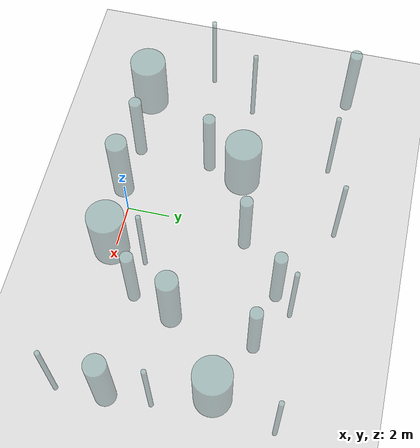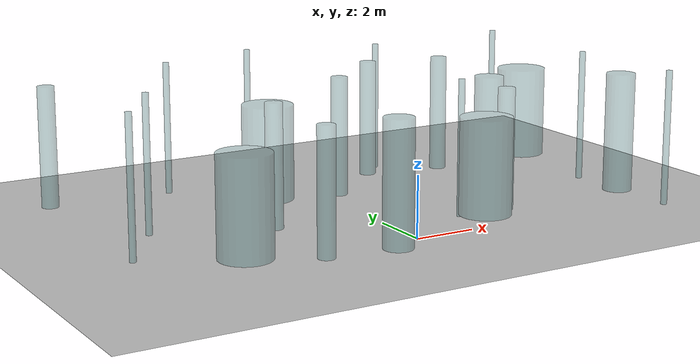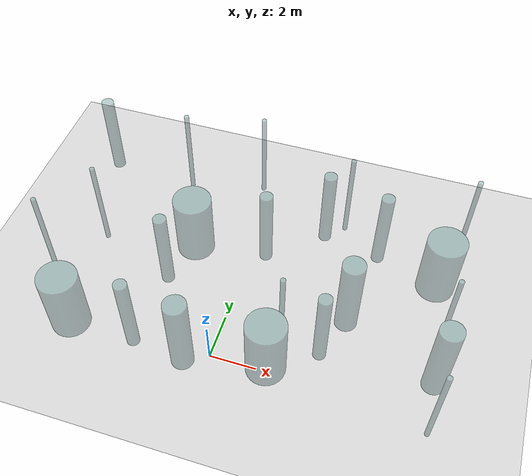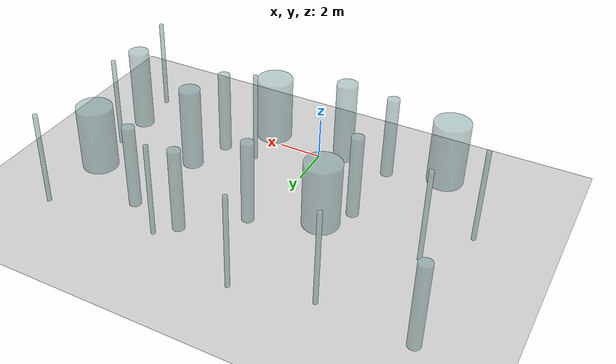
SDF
<sdf version="1.6">
 <world name="default">
  <model name="ground_plane">
   <static>1</static>
   <link name="link">
    <collision name="collision">
     <geometry><plane><normal>0 0 1</normal><size>100 100</size></plane></geometry>
     <surface><friction><ode><mu>100</mu><mu2>50</mu2></ode></friction></surface>
    </collision>
    <visual name="visual">
     <cast_shadows>0</cast_shadows>
     <geometry><plane><normal>0 0 1</normal><size>100 100</size></plane></geometry>
     <material>
      <script><uri>file://media/materials/scripts/gazebo.material</uri><name>Gazebo/Grey</name></script>
     </material>
    </visual>
   </link>
  </model>
  <model name="cylinders">
   <link name="link_clone">
    <inertial>
     <mass>1</mass>
     <inertia><ixx>0.145833</ixx><ixy>0</ixy><ixz>0</ixz><iyy>0.145833</iyy><iyz>0</iyz><izz>0.125</izz></inertia>
    </inertial>
    <pose>-2.72794 0.553847 -0 -0 -0 -0.001272</pose>
    <visual name="visual">
     <geometry><cylinder><radius>0.280725</radius><length>4</length></cylinder></geometry>
     <material>
      <script><name>Gazebo/Grey</name><uri>file://media/materials/scripts/gazebo.material</uri></script>
      <ambient>0.1 0.1 0.9 0.6</ambient>
      <shader type="vertex"><normal_map>__default__</normal_map></shader>
      <diffuse>0.3 0.5 0.5 0.4</diffuse>
      <specular>0.01 0.01 0.01 1</specular>
      <emissive>0 0 0 1</emissive>
      <lighting>1</lighting>
     </material>
    </visual>
    <collision name="collision">
     <geometry><cylinder><radius>0.280725</radius><length>4</length></cylinder></geometry>
     <surface>
      <friction>
       <ode><mu>1</mu><mu2>1</mu2><fdir1>0 0 0</fdir1><slip1>0</slip1><slip2>0</slip2></ode>
       <torsional>
        <coefficient>1</coefficient>
        <patch_radius>0</patch_radius>
        <surface_radius>0</surface_radius>
        <use_patch_radius>1</use_patch_radius>
        <ode><slip>0</slip></ode>
       </torsional>
      </friction>
      <bounce><restitution_coefficient>0</restitution_coefficient><threshold>1e+06</threshold></bounce>
      <contact>
       <collide_without_contact>0</collide_without_contact>
       <collide_without_contact_bitmask>1</collide_without_contact_bitmask>
       <collide_bitmask>1</collide_bitmask>
       <ode>
        <soft_cfm>0</soft_cfm>
        <soft_erp>0.2</soft_erp>
        <kp>1e+13</kp>
        <kd>1</kd>
        <max_vel>0.01</max_vel>
        <min_depth>0</min_depth>
       </ode>
       <bullet>
        <split_impulse>1</split_impulse>
        <split_impulse_penetration_threshold>-0.01</split_impulse_penetration_threshold>
        <soft_cfm>0</soft_cfm>
        <soft_erp>0.2</soft_erp>
        <kp>1e+13</kp>
        <kd>1</kd>
       </bullet>
      </contact>
     </surface>
    </collision>
   </link>
   <link name="link_clone_0">
    <inertial>
     <mass>1</mass>
     <inertia><ixx>0.145833</ixx><ixy>0</ixy><ixz>0</ixz><iyy>0.145833</iyy><iyz>0</iyz><izz>0.125</izz></inertia>
    </inertial>
    <pose>-2.56006 4.06753 -1e-06 -0 -0 -0.001272</pose>
    <visual name="visual">
     <geometry><cylinder><radius>0.280725</radius><length>4</length></cylinder></geometry>
     <material>
      <script><name>Gazebo/Grey</name><uri>file://media/materials/scripts/gazebo.material</uri></script>
      <ambient>0.1 0.1 0.9 0.6</ambient>
      <shader type="vertex"><normal_map>__default__</normal_map></shader>
      <diffuse>0.3 0.5 0.5 0.4</diffuse>
      <specular>0.01 0.01 0.01 1</specular>
      <emissive>0 0 0 1</emissive>
      <lighting>1</lighting>
     </material>
    </visual>
    <collision name="collision">
     <geometry><cylinder><radius>0.280725</radius><length>4</length></cylinder></geometry>
     <surface>
      <friction>
       <ode><mu>1</mu><mu2>1</mu2><fdir1>0 0 0</fdir1><slip1>0</slip1><slip2>0</slip2></ode>
       <torsional>
        <coefficient>1</coefficient>
        <patch_radius>0</patch_radius>
        <surface_radius>0</surface_radius>
        <use_patch_radius>1</use_patch_radius>
        <ode><slip>0</slip></ode>
       </torsional>
      </friction>
      <bounce><restitution_coefficient>0</restitution_coefficient><threshold>1e+06</threshold></bounce>
      <contact>
       <collide_without_contact>0</collide_without_contact>
       <collide_without_contact_bitmask>1</collide_without_contact_bitmask>
       <collide_bitmask>1</collide_bitmask>
       <ode>
        <soft_cfm>0</soft_cfm>
        <soft_erp>0.2</soft_erp>
        <kp>1e+13</kp>
        <kd>1</kd>
        <max_vel>0.01</max_vel>
        <min_depth>0</min_depth>
       </ode>
       <bullet>
        <split_impulse>1</split_impulse>
        <split_impulse_penetration_threshold>-0.01</split_impulse_penetration_threshold>
        <soft_cfm>0</soft_cfm>
        <soft_erp>0.2</soft_erp>
        <kp>1e+13</kp>
        <kd>1</kd>
       </bullet>
      </contact>
     </surface>
    </collision>
   </link>
   <link name="link_clone_1">
    <inertial>
     <mass>1</mass>
     <inertia><ixx>0.145833</ixx><ixy>0</ixy><ixz>0</ixz><iyy>0.145833</iyy><iyz>0</iyz><izz>0.125</izz></inertia>
    </inertial>
    <pose>1.23896 6.59521 -0 -0 -0 -0.001272</pose>
    <visual name="visual">
     <geometry><cylinder><radius>0.280725</radius><length>4</length></cylinder></geometry>
     <material>
      <script><name>Gazebo/Grey</name><uri>file://media/materials/scripts/gazebo.material</uri></script>
      <ambient>0.1 0.1 0.9 0.6</ambient>
      <shader type="vertex"><normal_map>__default__</normal_map></shader>
      <diffuse>0.3 0.5 0.5 0.4</diffuse>
      <specular>0.01 0.01 0.01 1</specular>
      <emissive>0 0 0 1</emissive>
      <lighting>1</lighting>
     </material>
    </visual>
    <collision name="collision">
     <geometry><cylinder><radius>0.280725</radius><length>4</length></cylinder></geometry>
     <surface>
      <friction>
       <ode><mu>1</mu><mu2>1</mu2><fdir1>0 0 0</fdir1><slip1>0</slip1><slip2>0</slip2></ode>
       <torsional>
        <coefficient>1</coefficient>
        <patch_radius>0</patch_radius>
        <surface_radius>0</surface_radius>
        <use_patch_radius>1</use_patch_radius>
        <ode><slip>0</slip></ode>
       </torsional>
      </friction>
      <bounce><restitution_coefficient>0</restitution_coefficient><threshold>1e+06</threshold></bounce>
      <contact>
       <collide_without_contact>0</collide_without_contact>
       <collide_without_contact_bitmask>1</collide_without_contact_bitmask>
       <collide_bitmask>1</collide_bitmask>
       <ode>
        <soft_cfm>0</soft_cfm>
        <soft_erp>0.2</soft_erp>
        <kp>1e+13</kp>
        <kd>1</kd>
        <max_vel>0.01</max_vel>
        <min_depth>0</min_depth>
       </ode>
       <bullet>
        <split_impulse>1</split_impulse>
        <split_impulse_penetration_threshold>-0.01</split_impulse_penetration_threshold>
        <soft_cfm>0</soft_cfm>
        <soft_erp>0.2</soft_erp>
        <kp>1e+13</kp>
        <kd>1</kd>
       </bullet>
      </contact>
     </surface>
    </collision>
   </link>
   <link name="link_clone_11_clone_0_clone">
    <inertial>
     <mass>2.96402</mass>
     <inertia><ixx>4.12512</ixx><ixy>0</ixy><ixz>0</ixz><iyy>4.12512</iyy><iyz>0</iyz><izz>0.346176</izz></inertia>
    </inertial>
    <pose>-0.406852 0.309702 2e-06 -0 -0 -0.003816</pose>
    <visual name="visual">
     <geometry><cylinder><radius>0.483307</radius><length>4</length></cylinder></geometry>
     <material>
      <script><name>Gazebo/Grey</name><uri>file://media/materials/scripts/gazebo.material</uri></script>
      <ambient>0.1 0.1 0.9 0.6</ambient>
      <shader type="vertex"><normal_map>__default__</normal_map></shader>
      <diffuse>0.3 0.5 0.5 0.4</diffuse>
      <specular>0.01 0.01 0.01 1</specular>
      <emissive>0 0 0 1</emissive>
      <lighting>1</lighting>
     </material>
    </visual>
    <collision name="collision">
     <geometry><cylinder><radius>0.483307</radius><length>4</length></cylinder></geometry>
     <surface>
      <friction>
       <ode><mu>1</mu><mu2>1</mu2><fdir1>0 0 0</fdir1><slip1>0</slip1><slip2>0</slip2></ode>
       <torsional>
        <coefficient>1</coefficient>
        <patch_radius>0</patch_radius>
        <surface_radius>0</surface_radius>
        <use_patch_radius>1</use_patch_radius>
        <ode><slip>0</slip></ode>
       </torsional>
      </friction>
      <bounce><restitution_coefficient>0</restitution_coefficient><threshold>1e+06</threshold></bounce>
      <contact>
       <collide_without_contact>0</collide_without_contact>
       <collide_without_contact_bitmask>1</collide_without_contact_bitmask>
       <collide_bitmask>1</collide_bitmask>
       <ode>
        <soft_cfm>0</soft_cfm>
        <soft_erp>0.2</soft_erp>
        <kp>1e+13</kp>
        <kd>1</kd>
        <max_vel>0.01</max_vel>
        <min_depth>0</min_depth>
       </ode>
       <bullet>
        <split_impulse>1</split_impulse>
        <split_impulse_penetration_threshold>-0.01</split_impulse_penetration_threshold>
        <soft_cfm>0</soft_cfm>
        <soft_erp>0.2</soft_erp>
        <kp>1e+13</kp>
        <kd>1</kd>
       </bullet>
      </contact>
     </surface>
    </collision>
   </link>
   <link name="link_clone_11_clone_0_clone_0">
    <inertial>
     <mass>2.96402</mass>
     <inertia><ixx>4.12512</ixx><ixy>0</ixy><ixz>0</ixz><iyy>4.12512</iyy><iyz>0</iyz><izz>0.346176</izz></inertia>
    </inertial>
    <pose>5.5796 4.15801 3e-06 -0 -0 -0.003816</pose>
    <visual name="visual">
     <geometry><cylinder><radius>0.483307</radius><length>4</length></cylinder></geometry>
     <material>
      <script><name>Gazebo/Grey</name><uri>file://media/materials/scripts/gazebo.material</uri></script>
      <ambient>0.1 0.1 0.9 0.6</ambient>
      <shader type="vertex"><normal_map>__default__</normal_map></shader>
      <diffuse>0.3 0.5 0.5 0.4</diffuse>
      <specular>0.01 0.01 0.01 1</specular>
      <emissive>0 0 0 1</emissive>
      <lighting>1</lighting>
     </material>
    </visual>
    <collision name="collision">
     <geometry><cylinder><radius>0.483307</radius><length>4</length></cylinder></geometry>
     <surface>
      <friction>
       <ode><mu>1</mu><mu2>1</mu2><fdir1>0 0 0</fdir1><slip1>0</slip1><slip2>0</slip2></ode>
       <torsional>
        <coefficient>1</coefficient>
        <patch_radius>0</patch_radius>
        <surface_radius>0</surface_radius>
        <use_patch_radius>1</use_patch_radius>
        <ode><slip>0</slip></ode>
       </torsional>
      </friction>
      <bounce><restitution_coefficient>0</restitution_coefficient><threshold>1e+06</threshold></bounce>
      <contact>
       <collide_without_contact>0</collide_without_contact>
       <collide_without_contact_bitmask>1</collide_without_contact_bitmask>
       <collide_bitmask>1</collide_bitmask>
       <ode>
        <soft_cfm>0</soft_cfm>
        <soft_erp>0.2</soft_erp>
        <kp>1e+13</kp>
        <kd>1</kd>
        <max_vel>0.01</max_vel>
        <min_depth>0</min_depth>
       </ode>
       <bullet>
        <split_impulse>1</split_impulse>
        <split_impulse_penetration_threshold>-0.01</split_impulse_penetration_threshold>
        <soft_cfm>0</soft_cfm>
        <soft_erp>0.2</soft_erp>
        <kp>1e+13</kp>
        <kd>1</kd>
       </bullet>
      </contact>
     </surface>
    </collision>
   </link>
   <link name="link_clone_11_clone_0_clone_1">
    <inertial>
     <mass>2.96402</mass>
     <inertia><ixx>4.12512</ixx><ixy>0</ixy><ixz>0</ixz><iyy>4.12512</iyy><iyz>0</iyz><izz>0.346176</izz></inertia>
    </inertial>
    <pose>9.65056 2.30999 3e-06 -0 -0 -0.003816</pose>
    <visual name="visual">
     <geometry><cylinder><radius>0.483307</radius><length>4</length></cylinder></geometry>
     <material>
      <script><name>Gazebo/Grey</name><uri>file://media/materials/scripts/gazebo.material</uri></script>
      <ambient>0.1 0.1 0.9 0.6</ambient>
      <shader type="vertex"><normal_map>__default__</normal_map></shader>
      <diffuse>0.3 0.5 0.5 0.4</diffuse>
      <specular>0.01 0.01 0.01 1</specular>
      <emissive>0 0 0 1</emissive>
      <lighting>1</lighting>
     </material>
    </visual>
    <collision name="collision">
     <geometry><cylinder><radius>0.483307</radius><length>4</length></cylinder></geometry>
     <surface>
      <friction>
       <ode><mu>1</mu><mu2>1</mu2><fdir1>0 0 0</fdir1><slip1>0</slip1><slip2>0</slip2></ode>
       <torsional>
        <coefficient>1</coefficient>
        <patch_radius>0</patch_radius>
        <surface_radius>0</surface_radius>
        <use_patch_radius>1</use_patch_radius>
        <ode><slip>0</slip></ode>
       </torsional>
      </friction>
      <bounce><restitution_coefficient>0</restitution_coefficient><threshold>1e+06</threshold></bounce>
      <contact>
       <collide_without_contact>0</collide_without_contact>
       <collide_without_contact_bitmask>1</collide_without_contact_bitmask>
       <collide_bitmask>1</collide_bitmask>
       <ode>
        <soft_cfm>0</soft_cfm>
        <soft_erp>0.2</soft_erp>
        <kp>1e+13</kp>
        <kd>1</kd>
        <max_vel>0.01</max_vel>
        <min_depth>0</min_depth>
       </ode>
       <bullet>
        <split_impulse>1</split_impulse>
        <split_impulse_penetration_threshold>-0.01</split_impulse_penetration_threshold>
        <soft_cfm>0</soft_cfm>
        <soft_erp>0.2</soft_erp>
        <kp>1e+13</kp>
        <kd>1</kd>
       </bullet>
      </contact>
     </surface>
    </collision>
   </link>
   <link name="link_clone_11_clone_1_clone">
    <inertial>
     <mass>0.168862</mass>
     <inertia>
      <ixx>0.33323</ixx>
      <ixy>0</ixy>
      <ixz>0</ixz>
      <iyy>0.33323</iyy>
      <iyz>0</iyz>
      <izz>0.000924096</izz>
     </inertia>
    </inertial>
    <pose>9.79655 0.113416 5e-06 -0 -0 -0.003816</pose>
    <visual name="visual">
     <geometry><cylinder><radius>0.104618</radius><length>4.8629</length></cylinder></geometry>
     <material>
      <script><name>Gazebo/Grey</name><uri>file://media/materials/scripts/gazebo.material</uri></script>
      <ambient>0.1 0.1 0.9 0.6</ambient>
      <shader type="vertex"><normal_map>__default__</normal_map></shader>
      <diffuse>0.3 0.5 0.5 0.4</diffuse>
      <specular>0.01 0.01 0.01 1</specular>
      <emissive>0 0 0 1</emissive>
      <lighting>1</lighting>
     </material>
    </visual>
    <collision name="collision">
     <geometry><cylinder><radius>0.104618</radius><length>4.8629</length></cylinder></geometry>
     <surface>
      <friction>
       <ode><mu>1</mu><mu2>1</mu2><fdir1>0 0 0</fdir1><slip1>0</slip1><slip2>0</slip2></ode>
       <torsional>
        <coefficient>1</coefficient>
        <patch_radius>0</patch_radius>
        <surface_radius>0</surface_radius>
        <use_patch_radius>1</use_patch_radius>
        <ode><slip>0</slip></ode>
       </torsional>
      </friction>
      <bounce><restitution_coefficient>0</restitution_coefficient><threshold>1e+06</threshold></bounce>
      <contact>
       <collide_without_contact>0</collide_without_contact>
       <collide_without_contact_bitmask>1</collide_without_contact_bitmask>
       <collide_bitmask>1</collide_bitmask>
       <ode>
        <soft_cfm>0</soft_cfm>
        <soft_erp>0.2</soft_erp>
        <kp>1e+13</kp>
        <kd>1</kd>
        <max_vel>0.01</max_vel>
        <min_depth>0</min_depth>
       </ode>
       <bullet>
        <split_impulse>1</split_impulse>
        <split_impulse_penetration_threshold>-0.01</split_impulse_penetration_threshold>
        <soft_cfm>0</soft_cfm>
        <soft_erp>0.2</soft_erp>
        <kp>1e+13</kp>
        <kd>1</kd>
       </bullet>
      </contact>
     </surface>
    </collision>
   </link>
   <link name="link_clone_11_clone_1_clone_2">
    <inertial>
     <mass>0.168862</mass>
     <inertia>
      <ixx>0.33323</ixx>
      <ixy>0</ixy>
      <ixz>0</ixz>
      <iyy>0.33323</iyy>
      <iyz>0</iyz>
      <izz>0.000924096</izz>
     </inertia>
    </inertial>
    <pose>-3.54691 9.77771 2e-06 -0 -0 -0.003816</pose>
    <visual name="visual">
     <geometry><cylinder><radius>0.104618</radius><length>4.8629</length></cylinder></geometry>
     <material>
      <script><name>Gazebo/Grey</name><uri>file://media/materials/scripts/gazebo.material</uri></script>
      <ambient>0.1 0.1 0.9 0.6</ambient>
      <shader type="vertex"><normal_map>__default__</normal_map></shader>
      <diffuse>0.3 0.5 0.5 0.4</diffuse>
      <specular>0.01 0.01 0.01 1</specular>
      <emissive>0 0 0 1</emissive>
      <lighting>1</lighting>
     </material>
    </visual>
    <collision name="collision">
     <geometry><cylinder><radius>0.104618</radius><length>4.8629</length></cylinder></geometry>
     <surface>
      <friction>
       <ode><mu>1</mu><mu2>1</mu2><fdir1>0 0 0</fdir1><slip1>0</slip1><slip2>0</slip2></ode>
       <torsional>
        <coefficient>1</coefficient>
        <patch_radius>0</patch_radius>
        <surface_radius>0</surface_radius>
        <use_patch_radius>1</use_patch_radius>
        <ode><slip>0</slip></ode>
       </torsional>
      </friction>
      <bounce><restitution_coefficient>0</restitution_coefficient><threshold>1e+06</threshold></bounce>
      <contact>
       <collide_without_contact>0</collide_without_contact>
       <collide_without_contact_bitmask>1</collide_without_contact_bitmask>
       <collide_bitmask>1</collide_bitmask>
       <ode>
        <soft_cfm>0</soft_cfm>
        <soft_erp>0.2</soft_erp>
        <kp>1e+13</kp>
        <kd>1</kd>
        <max_vel>0.01</max_vel>
        <min_depth>0</min_depth>
       </ode>
       <bullet>
        <split_impulse>1</split_impulse>
        <split_impulse_penetration_threshold>-0.01</split_impulse_penetration_threshold>
        <soft_cfm>0</soft_cfm>
        <soft_erp>0.2</soft_erp>
        <kp>1e+13</kp>
        <kd>1</kd>
       </bullet>
      </contact>
     </surface>
    </collision>
   </link>
   <link name="link_clone_11_clone_1_clone_3">
    <inertial>
     <mass>0.168862</mass>
     <inertia>
      <ixx>0.33323</ixx>
      <ixy>0</ixy>
      <ixz>0</ixz>
      <iyy>0.33323</iyy>
      <iyz>0</iyz>
      <izz>0.000924096</izz>
     </inertia>
    </inertial>
    <pose>-6.17339 5.47355 2e-06 -0 -0 -0.003816</pose>
    <visual name="visual">
     <geometry><cylinder><radius>0.104618</radius><length>4.8629</length></cylinder></geometry>
     <material>
      <script><name>Gazebo/Grey</name><uri>file://media/materials/scripts/gazebo.material</uri></script>
      <ambient>0.1 0.1 0.9 0.6</ambient>
      <shader type="vertex"><normal_map>__default__</normal_map></shader>
      <diffuse>0.3 0.5 0.5 0.4</diffuse>
      <specular>0.01 0.01 0.01 1</specular>
      <emissive>0 0 0 1</emissive>
      <lighting>1</lighting>
     </material>
    </visual>
    <collision name="collision">
     <geometry><cylinder><radius>0.104618</radius><length>4.8629</length></cylinder></geometry>
     <surface>
      <friction>
       <ode><mu>1</mu><mu2>1</mu2><fdir1>0 0 0</fdir1><slip1>0</slip1><slip2>0</slip2></ode>
       <torsional>
        <coefficient>1</coefficient>
        <patch_radius>0</patch_radius>
        <surface_radius>0</surface_radius>
        <use_patch_radius>1</use_patch_radius>
        <ode><slip>0</slip></ode>
       </torsional>
      </friction>
      <bounce><restitution_coefficient>0</restitution_coefficient><threshold>1e+06</threshold></bounce>
      <contact>
       <collide_without_contact>0</collide_without_contact>
       <collide_without_contact_bitmask>1</collide_without_contact_bitmask>
       <collide_bitmask>1</collide_bitmask>
       <ode>
        <soft_cfm>0</soft_cfm>
        <soft_erp>0.2</soft_erp>
        <kp>1e+13</kp>
        <kd>1</kd>
        <max_vel>0.01</max_vel>
        <min_depth>0</min_depth>
       </ode>
       <bullet>
        <split_impulse>1</split_impulse>
        <split_impulse_penetration_threshold>-0.01</split_impulse_penetration_threshold>
        <soft_cfm>0</soft_cfm>
        <soft_erp>0.2</soft_erp>
        <kp>1e+13</kp>
        <kd>1</kd>
       </bullet>
      </contact>
     </surface>
    </collision>
   </link>
   <link name="link_clone_11_clone_1_clone_4">
    <inertial>
     <mass>0.168862</mass>
     <inertia>
      <ixx>0.33323</ixx>
      <ixy>0</ixy>
      <ixz>0</ixz>
      <iyy>0.33323</iyy>
      <iyz>0</iyz>
      <izz>0.000924096</izz>
     </inertia>
    </inertial>
    <pose>9.6101 4.30482 4e-06 -0 -0 -0.003816</pose>
    <visual name="visual">
     <geometry><cylinder><radius>0.104618</radius><length>4.8629</length></cylinder></geometry>
     <material>
      <script><name>Gazebo/Grey</name><uri>file://media/materials/scripts/gazebo.material</uri></script>
      <ambient>0.1 0.1 0.9 0.6</ambient>
      <shader type="vertex"><normal_map>__default__</normal_map></shader>
      <diffuse>0.3 0.5 0.5 0.4</diffuse>
      <specular>0.01 0.01 0.01 1</specular>
      <emissive>0 0 0 1</emissive>
      <lighting>1</lighting>
     </material>
    </visual>
    <collision name="collision">
     <geometry><cylinder><radius>0.104618</radius><length>4.8629</length></cylinder></geometry>
     <surface>
      <friction>
       <ode><mu>1</mu><mu2>1</mu2><fdir1>0 0 0</fdir1><slip1>0</slip1><slip2>0</slip2></ode>
       <torsional>
        <coefficient>1</coefficient>
        <patch_radius>0</patch_radius>
        <surface_radius>0</surface_radius>
        <use_patch_radius>1</use_patch_radius>
        <ode><slip>0</slip></ode>
       </torsional>
      </friction>
      <bounce><restitution_coefficient>0</restitution_coefficient><threshold>1e+06</threshold></bounce>
      <contact>
       <collide_without_contact>0</collide_without_contact>
       <collide_without_contact_bitmask>1</collide_without_contact_bitmask>
       <collide_bitmask>1</collide_bitmask>
       <ode>
        <soft_cfm>0</soft_cfm>
        <soft_erp>0.2</soft_erp>
        <kp>1e+13</kp>
        <kd>1</kd>
        <max_vel>0.01</max_vel>
        <min_depth>0</min_depth>
       </ode>
       <bullet>
        <split_impulse>1</split_impulse>
        <split_impulse_penetration_threshold>-0.01</split_impulse_penetration_threshold>
        <soft_cfm>0</soft_cfm>
        <soft_erp>0.2</soft_erp>
        <kp>1e+13</kp>
        <kd>1</kd>
       </bullet>
      </contact>
     </surface>
    </collision>
   </link>
   <link name="link_clone_11_clone_1_clone_4_clone_1">
    <inertial>
     <mass>0.168862</mass>
     <inertia>
      <ixx>0.33323</ixx>
      <ixy>0</ixy>
      <ixz>0</ixz>
      <iyy>0.33323</iyy>
      <iyz>0</iyz>
      <izz>0.000924096</izz>
     </inertia>
    </inertial>
    <pose>-7.70706 3.15792 3e-06 -0 -0 -0.005088</pose>
    <visual name="visual">
     <geometry><cylinder><radius>0.104618</radius><length>4.8629</length></cylinder></geometry>
     <material>
      <script><name>Gazebo/Grey</name><uri>file://media/materials/scripts/gazebo.material</uri></script>
      <ambient>0.1 0.1 0.9 0.6</ambient>
      <shader type="vertex"><normal_map>__default__</normal_map></shader>
      <diffuse>0.3 0.5 0.5 0.4</diffuse>
      <specular>0.01 0.01 0.01 1</specular>
      <emissive>0 0 0 1</emissive>
      <lighting>1</lighting>
     </material>
    </visual>
    <collision name="collision">
     <geometry><cylinder><radius>0.104618</radius><length>4.8629</length></cylinder></geometry>
     <surface>
      <friction>
       <ode><mu>1</mu><mu2>1</mu2><fdir1>0 0 0</fdir1><slip1>0</slip1><slip2>0</slip2></ode>
       <torsional>
        <coefficient>1</coefficient>
        <patch_radius>0</patch_radius>
        <surface_radius>0</surface_radius>
        <use_patch_radius>1</use_patch_radius>
        <ode><slip>0</slip></ode>
       </torsional>
      </friction>
      <bounce><restitution_coefficient>0</restitution_coefficient><threshold>1e+06</threshold></bounce>
      <contact>
       <collide_without_contact>0</collide_without_contact>
       <collide_without_contact_bitmask>1</collide_without_contact_bitmask>
       <collide_bitmask>1</collide_bitmask>
       <ode>
        <soft_cfm>0</soft_cfm>
        <soft_erp>0.2</soft_erp>
        <kp>1e+13</kp>
        <kd>1</kd>
        <max_vel>0.01</max_vel>
        <min_depth>0</min_depth>
       </ode>
       <bullet>
        <split_impulse>1</split_impulse>
        <split_impulse_penetration_threshold>-0.01</split_impulse_penetration_threshold>
        <soft_cfm>0</soft_cfm>
        <soft_erp>0.2</soft_erp>
        <kp>1e+13</kp>
        <kd>1</kd>
       </bullet>
      </contact>
     </surface>
    </collision>
   </link>
   <link name="link_clone_11_clone_1_clone_4_clone_2">
    <inertial>
     <mass>0.168862</mass>
     <inertia>
      <ixx>0.33323</ixx>
      <ixy>0</ixy>
      <ixz>0</ixz>
      <iyy>0.33323</iyy>
      <iyz>0</iyz>
      <izz>0.000924096</izz>
     </inertia>
    </inertial>
    <pose>-0.115447 10.6083 4e-06 -0 -0 -0.005088</pose>
    <visual name="visual">
     <geometry><cylinder><radius>0.104618</radius><length>4.8629</length></cylinder></geometry>
     <material>
      <script><name>Gazebo/Grey</name><uri>file://media/materials/scripts/gazebo.material</uri></script>
      <ambient>0.1 0.1 0.9 0.6</ambient>
      <shader type="vertex"><normal_map>__default__</normal_map></shader>
      <diffuse>0.3 0.5 0.5 0.4</diffuse>
      <specular>0.01 0.01 0.01 1</specular>
      <emissive>0 0 0 1</emissive>
      <lighting>1</lighting>
     </material>
    </visual>
    <collision name="collision">
     <geometry><cylinder><radius>0.104618</radius><length>4.8629</length></cylinder></geometry>
     <surface>
      <friction>
       <ode><mu>1</mu><mu2>1</mu2><fdir1>0 0 0</fdir1><slip1>0</slip1><slip2>0</slip2></ode>
       <torsional>
        <coefficient>1</coefficient>
        <patch_radius>0</patch_radius>
        <surface_radius>0</surface_radius>
        <use_patch_radius>1</use_patch_radius>
        <ode><slip>0</slip></ode>
       </torsional>
      </friction>
      <bounce><restitution_coefficient>0</restitution_coefficient><threshold>1e+06</threshold></bounce>
      <contact>
       <collide_without_contact>0</collide_without_contact>
       <collide_without_contact_bitmask>1</collide_without_contact_bitmask>
       <collide_bitmask>1</collide_bitmask>
       <ode>
        <soft_cfm>0</soft_cfm>
        <soft_erp>0.2</soft_erp>
        <kp>1e+13</kp>
        <kd>1</kd>
        <max_vel>0.01</max_vel>
        <min_depth>0</min_depth>
       </ode>
       <bullet>
        <split_impulse>1</split_impulse>
        <split_impulse_penetration_threshold>-0.01</split_impulse_penetration_threshold>
        <soft_cfm>0</soft_cfm>
        <soft_erp>0.2</soft_erp>
        <kp>1e+13</kp>
        <kd>1</kd>
       </bullet>
      </contact>
     </surface>
    </collision>
   </link>
   <link name="link_clone_11_clone_1_clone_4_clone_3">
    <inertial>
     <mass>0.168862</mass>
     <inertia>
      <ixx>0.33323</ixx>
      <ixy>0</ixy>
      <ixz>0</ixz>
      <iyy>0.33323</iyy>
      <iyz>0</iyz>
      <izz>0.000924096</izz>
     </inertia>
    </inertial>
    <pose>4.31463 9.30821 4e-06 -0 -0 -0.005088</pose>
    <visual name="visual">
     <geometry><cylinder><radius>0.104618</radius><length>4.8629</length></cylinder></geometry>
     <material>
      <script><name>Gazebo/Grey</name><uri>file://media/materials/scripts/gazebo.material</uri></script>
      <ambient>0.1 0.1 0.9 0.6</ambient>
      <shader type="vertex"><normal_map>__default__</normal_map></shader>
      <diffuse>0.3 0.5 0.5 0.4</diffuse>
      <specular>0.01 0.01 0.01 1</specular>
      <emissive>0 0 0 1</emissive>
      <lighting>1</lighting>
     </material>
    </visual>
    <collision name="collision">
     <geometry><cylinder><radius>0.104618</radius><length>4.8629</length></cylinder></geometry>
     <surface>
      <friction>
       <ode><mu>1</mu><mu2>1</mu2><fdir1>0 0 0</fdir1><slip1>0</slip1><slip2>0</slip2></ode>
       <torsional>
        <coefficient>1</coefficient>
        <patch_radius>0</patch_radius>
        <surface_radius>0</surface_radius>
        <use_patch_radius>1</use_patch_radius>
        <ode><slip>0</slip></ode>
       </torsional>
      </friction>
      <bounce><restitution_coefficient>0</restitution_coefficient><threshold>1e+06</threshold></bounce>
      <contact>
       <collide_without_contact>0</collide_without_contact>
       <collide_without_contact_bitmask>1</collide_without_contact_bitmask>
       <collide_bitmask>1</collide_bitmask>
       <ode>
        <soft_cfm>0</soft_cfm>
        <soft_erp>0.2</soft_erp>
        <kp>1e+13</kp>
        <kd>1</kd>
        <max_vel>0.01</max_vel>
        <min_depth>0</min_depth>
       </ode>
       <bullet>
        <split_impulse>1</split_impulse>
        <split_impulse_penetration_threshold>-0.01</split_impulse_penetration_threshold>
        <soft_cfm>0</soft_cfm>
        <soft_erp>0.2</soft_erp>
        <kp>1e+13</kp>
        <kd>1</kd>
       </bullet>
      </contact>
     </surface>
    </collision>
   </link>
   <link name="link_clone_11_clone_1_clone_5">
    <inertial>
     <mass>0.168862</mass>
     <inertia>
      <ixx>0.33323</ixx>
      <ixy>0</ixy>
      <ixz>0</ixz>
      <iyy>0.33323</iyy>
      <iyz>0</iyz>
      <izz>0.000924096</izz>
     </inertia>
    </inertial>
    <pose>9.64956 9.66204 4e-06 -0 -0 -0.003816</pose>
    <visual name="visual">
     <geometry><cylinder><radius>0.104618</radius><length>4.8629</length></cylinder></geometry>
     <material>
      <script><name>Gazebo/Grey</name><uri>file://media/materials/scripts/gazebo.material</uri></script>
      <ambient>0.1 0.1 0.9 0.6</ambient>
      <shader type="vertex"><normal_map>__default__</normal_map></shader>
      <diffuse>0.3 0.5 0.5 0.4</diffuse>
      <specular>0.01 0.01 0.01 1</specular>
      <emissive>0 0 0 1</emissive>
      <lighting>1</lighting>
     </material>
    </visual>
    <collision name="collision">
     <geometry><cylinder><radius>0.104618</radius><length>4.8629</length></cylinder></geometry>
     <surface>
      <friction>
       <ode><mu>1</mu><mu2>1</mu2><fdir1>0 0 0</fdir1><slip1>0</slip1><slip2>0</slip2></ode>
       <torsional>
        <coefficient>1</coefficient>
        <patch_radius>0</patch_radius>
        <surface_radius>0</surface_radius>
        <use_patch_radius>1</use_patch_radius>
        <ode><slip>0</slip></ode>
       </torsional>
      </friction>
      <bounce><restitution_coefficient>0</restitution_coefficient><threshold>1e+06</threshold></bounce>
      <contact>
       <collide_without_contact>0</collide_without_contact>
       <collide_without_contact_bitmask>1</collide_without_contact_bitmask>
       <collide_bitmask>1</collide_bitmask>
       <ode>
        <soft_cfm>0</soft_cfm>
        <soft_erp>0.2</soft_erp>
        <kp>1e+13</kp>
        <kd>1</kd>
        <max_vel>0.01</max_vel>
        <min_depth>0</min_depth>
       </ode>
       <bullet>
        <split_impulse>1</split_impulse>
        <split_impulse_penetration_threshold>-0.01</split_impulse_penetration_threshold>
        <soft_cfm>0</soft_cfm>
        <soft_erp>0.2</soft_erp>
        <kp>1e+13</kp>
        <kd>1</kd>
       </bullet>
      </contact>
     </surface>
    </collision>
   </link>
   <link name="link_clone_11_clone_1_clone_8">
    <inertial>
     <mass>0.168862</mass>
     <inertia>
      <ixx>0.33323</ixx>
      <ixy>0</ixy>
      <ixz>0</ixz>
      <iyy>0.33323</iyy>
      <iyz>0</iyz>
      <izz>0.000924096</izz>
     </inertia>
    </inertial>
    <pose>3.2156 2.33939 4e-06 -0 -0 -0.003816</pose>
    <visual name="visual">
     <geometry><cylinder><radius>0.104618</radius><length>4.8629</length></cylinder></geometry>
     <material>
      <script><name>Gazebo/Grey</name><uri>file://media/materials/scripts/gazebo.material</uri></script>
      <ambient>0.1 0.1 0.9 0.6</ambient>
      <shader type="vertex"><normal_map>__default__</normal_map></shader>
      <diffuse>0.3 0.5 0.5 0.4</diffuse>
      <specular>0.01 0.01 0.01 1</specular>
      <emissive>0 0 0 1</emissive>
      <lighting>1</lighting>
     </material>
    </visual>
    <collision name="collision">
     <geometry><cylinder><radius>0.104618</radius><length>4.8629</length></cylinder></geometry>
     <surface>
      <friction>
       <ode><mu>1</mu><mu2>1</mu2><fdir1>0 0 0</fdir1><slip1>0</slip1><slip2>0</slip2></ode>
       <torsional>
        <coefficient>1</coefficient>
        <patch_radius>0</patch_radius>
        <surface_radius>0</surface_radius>
        <use_patch_radius>1</use_patch_radius>
        <ode><slip>0</slip></ode>
       </torsional>
      </friction>
      <bounce><restitution_coefficient>0</restitution_coefficient><threshold>1e+06</threshold></bounce>
      <contact>
       <collide_without_contact>0</collide_without_contact>
       <collide_without_contact_bitmask>1</collide_without_contact_bitmask>
       <collide_bitmask>1</collide_bitmask>
       <ode>
        <soft_cfm>0</soft_cfm>
        <soft_erp>0.2</soft_erp>
        <kp>1e+13</kp>
        <kd>1</kd>
        <max_vel>0.01</max_vel>
        <min_depth>0</min_depth>
       </ode>
       <bullet>
        <split_impulse>1</split_impulse>
        <split_impulse_penetration_threshold>-0.01</split_impulse_penetration_threshold>
        <soft_cfm>0</soft_cfm>
        <soft_erp>0.2</soft_erp>
        <kp>1e+13</kp>
        <kd>1</kd>
       </bullet>
      </contact>
     </surface>
    </collision>
   </link>
   <link name="link_clone_11_clone_3">
    <inertial>
     <mass>1</mass>
     <inertia><ixx>0.145833</ixx><ixy>0</ixy><ixz>0</ixz><iyy>0.145833</iyy><iyz>0</iyz><izz>0.125</izz></inertia>
    </inertial>
    <pose>6.14392 8.02008 3e-06 -0 -0 -0.002544</pose>
    <visual name="visual">
     <geometry><cylinder><radius>0.280725</radius><length>4</length></cylinder></geometry>
     <material>
      <script><name>Gazebo/Grey</name><uri>file://media/materials/scripts/gazebo.material</uri></script>
      <ambient>0.1 0.1 0.9 0.6</ambient>
      <shader type="vertex"><normal_map>__default__</normal_map></shader>
      <diffuse>0.3 0.5 0.5 0.4</diffuse>
      <specular>0.01 0.01 0.01 1</specular>
      <emissive>0 0 0 1</emissive>
      <lighting>1</lighting>
     </material>
    </visual>
    <collision name="collision">
     <geometry><cylinder><radius>0.280725</radius><length>4</length></cylinder></geometry>
     <surface>
      <friction>
       <ode><mu>1</mu><mu2>1</mu2><fdir1>0 0 0</fdir1><slip1>0</slip1><slip2>0</slip2></ode>
       <torsional>
        <coefficient>1</coefficient>
        <patch_radius>0</patch_radius>
        <surface_radius>0</surface_radius>
        <use_patch_radius>1</use_patch_radius>
        <ode><slip>0</slip></ode>
       </torsional>
      </friction>
      <bounce><restitution_coefficient>0</restitution_coefficient><threshold>1e+06</threshold></bounce>
      <contact>
       <collide_without_contact>0</collide_without_contact>
       <collide_without_contact_bitmask>1</collide_without_contact_bitmask>
       <collide_bitmask>1</collide_bitmask>
       <ode>
        <soft_cfm>0</soft_cfm>
        <soft_erp>0.2</soft_erp>
        <kp>1e+13</kp>
        <kd>1</kd>
        <max_vel>0.01</max_vel>
        <min_depth>0</min_depth>
       </ode>
       <bullet>
        <split_impulse>1</split_impulse>
        <split_impulse_penetration_threshold>-0.01</split_impulse_penetration_threshold>
        <soft_cfm>0</soft_cfm>
        <soft_erp>0.2</soft_erp>
        <kp>1e+13</kp>
        <kd>1</kd>
       </bullet>
      </contact>
     </surface>
    </collision>
   </link>
   <link name="link_clone_5_clone_0">
    <inertial>
     <mass>6.752</mass>
     <inertia><ixx>6.51683</ixx><ixy>0</ixy><ixz>0</ixz><iyy>6.51683</iyy><iyz>0</iyz><izz>2.32983</izz></inertia>
    </inertial>
    <pose>-1.84817 5.83014 0 -0 -0 -0.002544</pose>
    <visual name="visual">
     <geometry><cylinder><radius>0.830732</radius><length>3.08411</length></cylinder></geometry>
     <material>
      <script><name>Gazebo/Grey</name><uri>file://media/materials/scripts/gazebo.material</uri></script>
      <ambient>0.1 0.1 0.9 0.6</ambient>
      <shader type="vertex"><normal_map>__default__</normal_map></shader>
      <diffuse>0.3 0.5 0.5 0.4</diffuse>
      <specular>0.01 0.01 0.01 1</specular>
      <emissive>0 0 0 1</emissive>
      <lighting>1</lighting>
     </material>
    </visual>
    <collision name="collision">
     <geometry><cylinder><radius>0.830732</radius><length>3.08411</length></cylinder></geometry>
     <surface>
      <friction>
       <ode><mu>1</mu><mu2>1</mu2><fdir1>0 0 0</fdir1><slip1>0</slip1><slip2>0</slip2></ode>
       <torsional>
        <coefficient>1</coefficient>
        <patch_radius>0</patch_radius>
        <surface_radius>0</surface_radius>
        <use_patch_radius>1</use_patch_radius>
        <ode><slip>0</slip></ode>
       </torsional>
      </friction>
      <bounce><restitution_coefficient>0</restitution_coefficient><threshold>1e+06</threshold></bounce>
      <contact>
       <collide_without_contact>0</collide_without_contact>
       <collide_without_contact_bitmask>1</collide_without_contact_bitmask>
       <collide_bitmask>1</collide_bitmask>
       <ode>
        <soft_cfm>0</soft_cfm>
        <soft_erp>0.2</soft_erp>
        <kp>1e+13</kp>
        <kd>1</kd>
        <max_vel>0.01</max_vel>
        <min_depth>0</min_depth>
       </ode>
       <bullet>
        <split_impulse>1</split_impulse>
        <split_impulse_penetration_threshold>-0.01</split_impulse_penetration_threshold>
        <soft_cfm>0</soft_cfm>
        <soft_erp>0.2</soft_erp>
        <kp>1e+13</kp>
        <kd>1</kd>
       </bullet>
      </contact>
     </surface>
    </collision>
   </link>
   <link name="link_clone_5_clone_1">
    <inertial>
     <mass>6.752</mass>
     <inertia><ixx>6.51683</ixx><ixy>0</ixy><ixz>0</ixz><iyy>6.51683</iyy><iyz>0</iyz><izz>2.32983</izz></inertia>
    </inertial>
    <pose>-5.43742 0.410506 0 -0 -0 -0.002544</pose>
    <visual name="visual">
     <geometry><cylinder><radius>0.830732</radius><length>3.08411</length></cylinder></geometry>
     <material>
      <script><name>Gazebo/Grey</name><uri>file://media/materials/scripts/gazebo.material</uri></script>
      <ambient>0.1 0.1 0.9 0.6</ambient>
      <shader type="vertex"><normal_map>__default__</normal_map></shader>
      <diffuse>0.3 0.5 0.5 0.4</diffuse>
      <specular>0.01 0.01 0.01 1</specular>
      <emissive>0 0 0 1</emissive>
      <lighting>1</lighting>
     </material>
    </visual>
    <collision name="collision">
     <geometry><cylinder><radius>0.830732</radius><length>3.08411</length></cylinder></geometry>
     <surface>
      <friction>
       <ode><mu>1</mu><mu2>1</mu2><fdir1>0 0 0</fdir1><slip1>0</slip1><slip2>0</slip2></ode>
       <torsional>
        <coefficient>1</coefficient>
        <patch_radius>0</patch_radius>
        <surface_radius>0</surface_radius>
        <use_patch_radius>1</use_patch_radius>
        <ode><slip>0</slip></ode>
       </torsional>
      </friction>
      <bounce><restitution_coefficient>0</restitution_coefficient><threshold>1e+06</threshold></bounce>
      <contact>
       <collide_without_contact>0</collide_without_contact>
       <collide_without_contact_bitmask>1</collide_without_contact_bitmask>
       <collide_bitmask>1</collide_bitmask>
       <ode>
        <soft_cfm>0</soft_cfm>
        <soft_erp>0.2</soft_erp>
        <kp>1e+13</kp>
        <kd>1</kd>
        <max_vel>0.01</max_vel>
        <min_depth>0</min_depth>
       </ode>
       <bullet>
        <split_impulse>1</split_impulse>
        <split_impulse_penetration_threshold>-0.01</split_impulse_penetration_threshold>
        <soft_cfm>0</soft_cfm>
        <soft_erp>0.2</soft_erp>
        <kp>1e+13</kp>
        <kd>1</kd>
       </bullet>
      </contact>
     </surface>
    </collision>
   </link>
   <link name="link_clone_5_clone_2">
    <inertial>
     <mass>6.752</mass>
     <inertia><ixx>6.51683</ixx><ixy>0</ixy><ixz>0</ixz><iyy>6.51683</iyy><iyz>0</iyz><izz>2.32983</izz></inertia>
    </inertial>
    <pose>8.89183 6.82748 2e-06 -0 -0 -0.002544</pose>
    <visual name="visual">
     <geometry><cylinder><radius>0.830732</radius><length>3.08411</length></cylinder></geometry>
     <material>
      <script><name>Gazebo/Grey</name><uri>file://media/materials/scripts/gazebo.material</uri></script>
      <ambient>0.1 0.1 0.9 0.6</ambient>
      <shader type="vertex"><normal_map>__default__</normal_map></shader>
      <diffuse>0.3 0.5 0.5 0.4</diffuse>
      <specular>0.01 0.01 0.01 1</specular>
      <emissive>0 0 0 1</emissive>
      <lighting>1</lighting>
     </material>
    </visual>
    <collision name="collision">
     <geometry><cylinder><radius>0.830732</radius><length>3.08411</length></cylinder></geometry>
     <surface>
      <friction>
       <ode><mu>1</mu><mu2>1</mu2><fdir1>0 0 0</fdir1><slip1>0</slip1><slip2>0</slip2></ode>
       <torsional>
        <coefficient>1</coefficient>
        <patch_radius>0</patch_radius>
        <surface_radius>0</surface_radius>
        <use_patch_radius>1</use_patch_radius>
        <ode><slip>0</slip></ode>
       </torsional>
      </friction>
      <bounce><restitution_coefficient>0</restitution_coefficient><threshold>1e+06</threshold></bounce>
      <contact>
       <collide_without_contact>0</collide_without_contact>
       <collide_without_contact_bitmask>1</collide_without_contact_bitmask>
       <collide_bitmask>1</collide_bitmask>
       <ode>
        <soft_cfm>0</soft_cfm>
        <soft_erp>0.2</soft_erp>
        <kp>1e+13</kp>
        <kd>1</kd>
        <max_vel>0.01</max_vel>
        <min_depth>0</min_depth>
       </ode>
       <bullet>
        <split_impulse>1</split_impulse>
        <split_impulse_penetration_threshold>-0.01</split_impulse_penetration_threshold>
        <soft_cfm>0</soft_cfm>
        <soft_erp>0.2</soft_erp>
        <kp>1e+13</kp>
        <kd>1</kd>
       </bullet>
      </contact>
     </surface>
    </collision>
   </link>
   <link name="link_clone_5_clone_3">
    <inertial>
     <mass>6.752</mass>
     <inertia><ixx>6.51683</ixx><ixy>0</ixy><ixz>0</ixz><iyy>6.51683</iyy><iyz>0</iyz><izz>2.32983</izz></inertia>
    </inertial>
    <pose>3.04607 0.741454 1e-06 -0 -0 -0.002544</pose>
    <visual name="visual">
     <geometry><cylinder><radius>0.830732</radius><length>3.08411</length></cylinder></geometry>
     <material>
      <script><name>Gazebo/Grey</name><uri>file://media/materials/scripts/gazebo.material</uri></script>
      <ambient>0.1 0.1 0.9 0.6</ambient>
      <shader type="vertex"><normal_map>__default__</normal_map></shader>
      <diffuse>0.3 0.5 0.5 0.4</diffuse>
      <specular>0.01 0.01 0.01 1</specular>
      <emissive>0 0 0 1</emissive>
      <lighting>1</lighting>
     </material>
    </visual>
    <collision name="collision">
     <geometry><cylinder><radius>0.830732</radius><length>3.08411</length></cylinder></geometry>
     <surface>
      <friction>
       <ode><mu>1</mu><mu2>1</mu2><fdir1>0 0 0</fdir1><slip1>0</slip1><slip2>0</slip2></ode>
       <torsional>
        <coefficient>1</coefficient>
        <patch_radius>0</patch_radius>
        <surface_radius>0</surface_radius>
        <use_patch_radius>1</use_patch_radius>
        <ode><slip>0</slip></ode>
       </torsional>
      </friction>
      <bounce><restitution_coefficient>0</restitution_coefficient><threshold>1e+06</threshold></bounce>
      <contact>
       <collide_without_contact>0</collide_without_contact>
       <collide_without_contact_bitmask>1</collide_without_contact_bitmask>
       <collide_bitmask>1</collide_bitmask>
       <ode>
        <soft_cfm>0</soft_cfm>
        <soft_erp>0.2</soft_erp>
        <kp>1e+13</kp>
        <kd>1</kd>
        <max_vel>0.01</max_vel>
        <min_depth>0</min_depth>
       </ode>
       <bullet>
        <split_impulse>1</split_impulse>
        <split_impulse_penetration_threshold>-0.01</split_impulse_penetration_threshold>
        <soft_cfm>0</soft_cfm>
        <soft_erp>0.2</soft_erp>
        <kp>1e+13</kp>
        <kd>1</kd>
       </bullet>
      </contact>
     </surface>
    </collision>
   </link>
   <link name="link_clone_6">
    <inertial>
     <mass>1</mass>
     <inertia><ixx>0.145833</ixx><ixy>0</ixy><ixz>0</ixz><iyy>0.145833</iyy><iyz>0</iyz><izz>0.125</izz></inertia>
    </inertial>
    <pose>4.91193 2.26982 1e-06 -0 -0 -0.001272</pose>
    <visual name="visual">
     <geometry><cylinder><radius>0.280725</radius><length>4</length></cylinder></geometry>
     <material>
      <script><name>Gazebo/Grey</name><uri>file://media/materials/scripts/gazebo.material</uri></script>
      <ambient>0.1 0.1 0.9 0.6</ambient>
      <shader type="vertex"><normal_map>__default__</normal_map></shader>
      <diffuse>0.3 0.5 0.5 0.4</diffuse>
      <specular>0.01 0.01 0.01 1</specular>
      <emissive>0 0 0 1</emissive>
      <lighting>1</lighting>
     </material>
    </visual>
    <collision name="collision">
     <geometry><cylinder><radius>0.280725</radius><length>4</length></cylinder></geometry>
     <surface>
      <friction>
       <ode><mu>1</mu><mu2>1</mu2><fdir1>0 0 0</fdir1><slip1>0</slip1><slip2>0</slip2></ode>
       <torsional>
        <coefficient>1</coefficient>
        <patch_radius>0</patch_radius>
        <surface_radius>0</surface_radius>
        <use_patch_radius>1</use_patch_radius>
        <ode><slip>0</slip></ode>
       </torsional>
      </friction>
      <bounce><restitution_coefficient>0</restitution_coefficient><threshold>1e+06</threshold></bounce>
      <contact>
       <collide_without_contact>0</collide_without_contact>
       <collide_without_contact_bitmask>1</collide_without_contact_bitmask>
       <collide_bitmask>1</collide_bitmask>
       <ode>
        <soft_cfm>0</soft_cfm>
        <soft_erp>0.2</soft_erp>
        <kp>1e+13</kp>
        <kd>1</kd>
        <max_vel>0.01</max_vel>
        <min_depth>0</min_depth>
       </ode>
       <bullet>
        <split_impulse>1</split_impulse>
        <split_impulse_penetration_threshold>-0.01</split_impulse_penetration_threshold>
        <soft_cfm>0</soft_cfm>
        <soft_erp>0.2</soft_erp>
        <kp>1e+13</kp>
        <kd>1</kd>
       </bullet>
      </contact>
     </surface>
    </collision>
   </link>
   <link name="link_clone_7">
    <inertial>
     <mass>1</mass>
     <inertia><ixx>0.145833</ixx><ixy>0</ixy><ixz>0</ixz><iyy>0.145833</iyy><iyz>0</iyz><izz>0.125</izz></inertia>
    </inertial>
    <pose>3.5302 8.52851 0 -0 -0 -0.001272</pose>
    <visual name="visual">
     <geometry><cylinder><radius>0.280725</radius><length>4</length></cylinder></geometry>
     <material>
      <script><name>Gazebo/Grey</name><uri>file://media/materials/scripts/gazebo.material</uri></script>
      <ambient>0.1 0.1 0.9 0.6</ambient>
      <shader type="vertex"><normal_map>__default__</normal_map></shader>
      <diffuse>0.3 0.5 0.5 0.4</diffuse>
      <specular>0.01 0.01 0.01 1</specular>
      <emissive>0 0 0 1</emissive>
      <lighting>1</lighting>
     </material>
    </visual>
    <collision name="collision">
     <geometry><cylinder><radius>0.280725</radius><length>4</length></cylinder></geometry>
     <surface>
      <friction>
       <ode><mu>1</mu><mu2>1</mu2><fdir1>0 0 0</fdir1><slip1>0</slip1><slip2>0</slip2></ode>
       <torsional>
        <coefficient>1</coefficient>
        <patch_radius>0</patch_radius>
        <surface_radius>0</surface_radius>
        <use_patch_radius>1</use_patch_radius>
        <ode><slip>0</slip></ode>
       </torsional>
      </friction>
      <bounce><restitution_coefficient>0</restitution_coefficient><threshold>1e+06</threshold></bounce>
      <contact>
       <collide_without_contact>0</collide_without_contact>
       <collide_without_contact_bitmask>1</collide_without_contact_bitmask>
       <collide_bitmask>1</collide_bitmask>
       <ode>
        <soft_cfm>0</soft_cfm>
        <soft_erp>0.2</soft_erp>
        <kp>1e+13</kp>
        <kd>1</kd>
        <max_vel>0.01</max_vel>
        <min_depth>0</min_depth>
       </ode>
       <bullet>
        <split_impulse>1</split_impulse>
        <split_impulse_penetration_threshold>-0.01</split_impulse_penetration_threshold>
        <soft_cfm>0</soft_cfm>
        <soft_erp>0.2</soft_erp>
        <kp>1e+13</kp>
        <kd>1</kd>
       </bullet>
      </contact>
     </surface>
    </collision>
   </link>
   <link name="link_clone_9">
    <inertial>
     <mass>1</mass>
     <inertia><ixx>0.145833</ixx><ixy>0</ixy><ixz>0</ixz><iyy>0.145833</iyy><iyz>0</iyz><izz>0.125</izz></inertia>
    </inertial>
    <pose>-7.64614 10.0377 -2e-06 -0 -0 -0.001272</pose>
    <visual name="visual">
     <geometry><cylinder><radius>0.280725</radius><length>4</length></cylinder></geometry>
     <material>
      <script><name>Gazebo/Grey</name><uri>file://media/materials/scripts/gazebo.material</uri></script>
      <ambient>0.1 0.1 0.9 0.6</ambient>
      <shader type="vertex"><normal_map>__default__</normal_map></shader>
      <diffuse>0.3 0.5 0.5 0.4</diffuse>
      <specular>0.01 0.01 0.01 1</specular>
      <emissive>0 0 0 1</emissive>
      <lighting>1</lighting>
     </material>
    </visual>
    <collision name="collision">
     <geometry><cylinder><radius>0.280725</radius><length>4</length></cylinder></geometry>
     <surface>
      <friction>
       <ode><mu>1</mu><mu2>1</mu2><fdir1>0 0 0</fdir1><slip1>0</slip1><slip2>0</slip2></ode>
       <torsional>
        <coefficient>1</coefficient>
        <patch_radius>0</patch_radius>
        <surface_radius>0</surface_radius>
        <use_patch_radius>1</use_patch_radius>
        <ode><slip>0</slip></ode>
       </torsional>
      </friction>
      <bounce><restitution_coefficient>0</restitution_coefficient><threshold>1e+06</threshold></bounce>
      <contact>
       <collide_without_contact>0</collide_without_contact>
       <collide_without_contact_bitmask>1</collide_without_contact_bitmask>
       <collide_bitmask>1</collide_bitmask>
       <ode>
        <soft_cfm>0</soft_cfm>
        <soft_erp>0.2</soft_erp>
        <kp>1e+13</kp>
        <kd>1</kd>
        <max_vel>0.01</max_vel>
        <min_depth>0</min_depth>
       </ode>
       <bullet>
        <split_impulse>1</split_impulse>
        <split_impulse_penetration_threshold>-0.01</split_impulse_penetration_threshold>
        <soft_cfm>0</soft_cfm>
        <soft_erp>0.2</soft_erp>
        <kp>1e+13</kp>
        <kd>1</kd>
       </bullet>
      </contact>
     </surface>
    </collision>
   </link>
   <static>0</static>
   <pose>-0.602294 -0.809739 2 0 -0 0.001272</pose>
  </model>
 </world>
</sdf>
